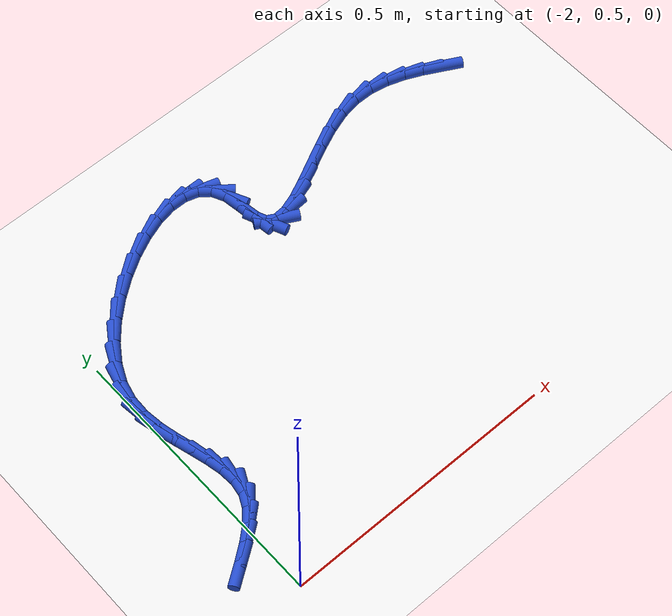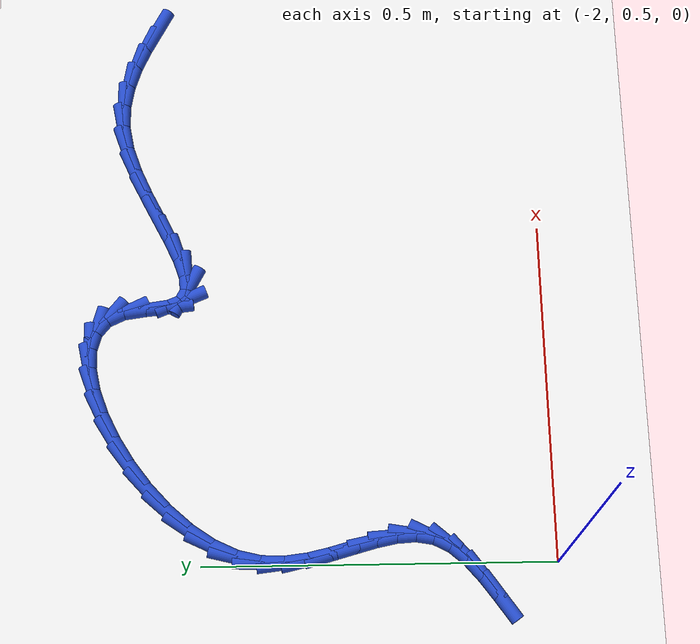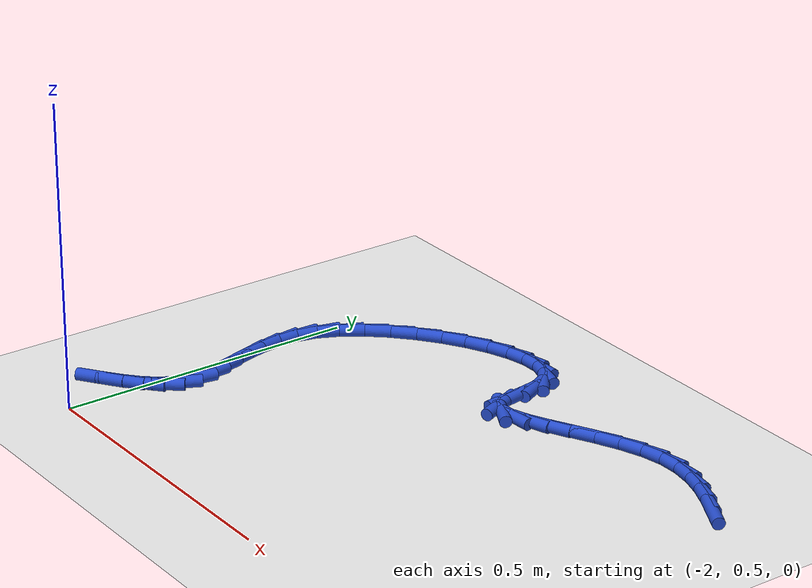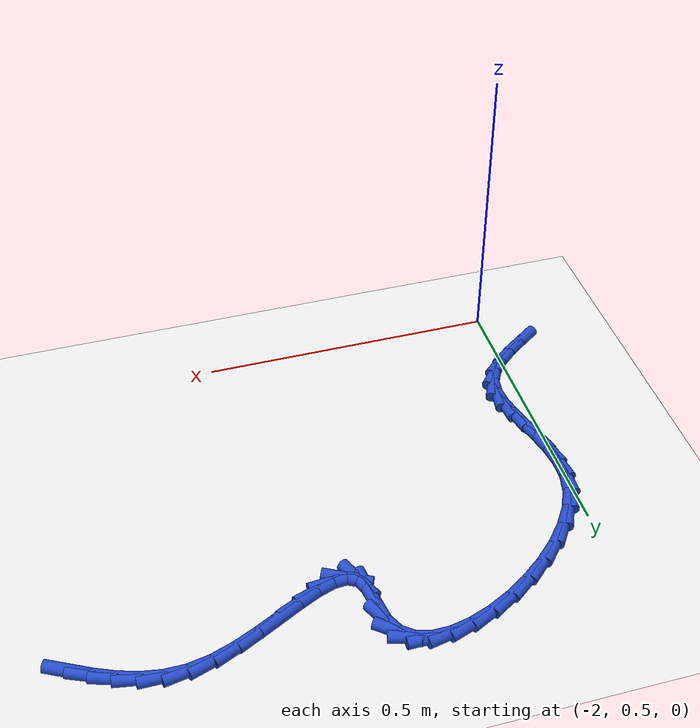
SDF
<sdf version="1.6">
 <world name="default">
  <model name="ground_plane">
   <static>1</static>
   <link name="link">
    <collision name="collision">
     <geometry><plane><normal>0 0 1</normal><size>100 100</size></plane></geometry>
     <surface><friction><ode><mu>100</mu><mu2>50</mu2></ode></friction></surface>
    </collision>
    <visual name="visual">
     <cast_shadows>0</cast_shadows>
     <geometry><plane><normal>0 0 1</normal><size>100 100</size></plane></geometry>
     <material>
      <script><uri>file://media/materials/scripts/gazebo.material</uri><name>Gazebo/WhiteGlow</name></script>
     </material>
    </visual>
   </link>
  </model>
  <model name="line">
   <link name="link_65">
    <pose>-1.1681376035330462 1.0748315598019451 0.01 0 1.57 -0.4891645409560779</pose>
    <collision name="collision">
     <geometry><cylinder><radius>0.01</radius><length>0.08</length></cylinder></geometry>
    </collision>
    <visual name="visual">
     <material>
      <script><name>Gazebo/Blue</name><uri>file://media/materials/scripts/gazebo.material</uri></script>
     </material>
     <geometry><cylinder><radius>0.01</radius><length>0.08</length></cylinder></geometry>
    </visual>
   </link>
   <link name="link_66">
    <pose>-1.1980914725470666 1.0907764678087983 0.01 0 1.57 -0.420090462002091</pose>
    <collision name="collision">
     <geometry><cylinder><radius>0.01</radius><length>0.08</length></cylinder></geometry>
    </collision>
    <visual name="visual">
     <material>
      <script><name>Gazebo/Blue</name><uri>file://media/materials/scripts/gazebo.material</uri></script>
     </material>
     <geometry><cylinder><radius>0.01</radius><length>0.08</length></cylinder></geometry>
    </visual>
   </link>
   <link name="link_67">
    <pose>-1.2291198885289614 1.1046362733399493 0.01 0 1.57 -0.31561590541470685</pose>
    <collision name="collision">
     <geometry><cylinder><radius>0.01</radius><length>0.08</length></cylinder></geometry>
    </collision>
    <visual name="visual">
     <material>
      <script><name>Gazebo/Blue</name><uri>file://media/materials/scripts/gazebo.material</uri></script>
     </material>
     <geometry><cylinder><radius>0.01</radius><length>0.08</length></cylinder></geometry>
    </visual>
   </link>
   <link name="link_68">
    <pose>-1.2613607887427254 1.1151639229093648 0.01 0 1.57 -0.1752657092987587</pose>
    <collision name="collision">
     <geometry><cylinder><radius>0.01</radius><length>0.08</length></cylinder></geometry>
    </collision>
    <visual name="visual">
     <material>
      <script><name>Gazebo/Blue</name><uri>file://media/materials/scripts/gazebo.material</uri></script>
     </material>
     <geometry><cylinder><radius>0.01</radius><length>0.08</length></cylinder></geometry>
    </visual>
   </link>
   <link name="link_69">
    <pose>-1.2949521104523547 1.121112363031013 0.01 0 1.57 -0.0034828337146663407</pose>
    <collision name="collision">
     <geometry><cylinder><radius>0.01</radius><length>0.08</length></cylinder></geometry>
    </collision>
    <visual name="visual">
     <material>
      <script><name>Gazebo/Blue</name><uri>file://media/materials/scripts/gazebo.material</uri></script>
     </material>
     <geometry><cylinder><radius>0.01</radius><length>0.08</length></cylinder></geometry>
    </visual>
   </link>
   <link name="link_70">
    <pose>-1.3300317909218455 1.1212345402188606 0.01 0 1.57 0.1841056616848136</pose>
    <collision name="collision">
     <geometry><cylinder><radius>0.01</radius><length>0.08</length></cylinder></geometry>
    </collision>
    <visual name="visual">
     <material>
      <script><name>Gazebo/Blue</name><uri>file://media/materials/scripts/gazebo.material</uri></script>
     </material>
     <geometry><cylinder><radius>0.01</radius><length>0.08</length></cylinder></geometry>
    </visual>
   </link>
   <link name="link_71">
    <pose>-1.366696831865767 1.1144069839541586 0.01 0 1.57 0.33178543731628474</pose>
    <collision name="collision">
     <geometry><cylinder><radius>0.01</radius><length>0.08</length></cylinder></geometry>
    </collision>
    <visual name="visual">
     <material>
      <script><name>Gazebo/Blue</name><uri>file://media/materials/scripts/gazebo.material</uri></script>
     </material>
     <geometry><cylinder><radius>0.01</radius><length>0.08</length></cylinder></geometry>
    </visual>
   </link>
   <link name="link_72">
    <pose>-1.404412599082707 1.1014131100758102 0.01 0 1.57 0.4205974914448263</pose>
    <collision name="collision">
     <geometry><cylinder><radius>0.01</radius><length>0.08</length></cylinder></geometry>
    </collision>
    <visual name="visual">
     <material>
      <script><name>Gazebo/Blue</name><uri>file://media/materials/scripts/gazebo.material</uri></script>
     </material>
     <geometry><cylinder><radius>0.01</radius><length>0.08</length></cylinder></geometry>
    </visual>
   </link>
   <link name="link_73">
    <pose>-1.442148256166399 1.0845343512250025 0.01 0 1.57 0.46552470300874693</pose>
    <collision name="collision">
     <geometry><cylinder><radius>0.01</radius><length>0.08</length></cylinder></geometry>
    </collision>
    <visual name="visual">
     <material>
      <script><name>Gazebo/Blue</name><uri>file://media/materials/scripts/gazebo.material</uri></script>
     </material>
     <geometry><cylinder><radius>0.01</radius><length>0.08</length></cylinder></geometry>
    </visual>
   </link>
   <link name="link_74">
    <pose>-1.4788596133850216 1.0660924532576839 0.01 0 1.57 0.4719689408459701</pose>
    <collision name="collision">
     <geometry><cylinder><radius>0.01</radius><length>0.08</length></cylinder></geometry>
    </collision>
    <visual name="visual">
     <material>
      <script><name>Gazebo/Blue</name><uri>file://media/materials/scripts/gazebo.material</uri></script>
     </material>
     <geometry><cylinder><radius>0.01</radius><length>0.08</length></cylinder></geometry>
    </visual>
   </link>
   <link name="link_75">
    <pose>-1.5135024810067528 1.0484091620298006 0.01 0 1.57 0.4337284967162558</pose>
    <collision name="collision">
     <geometry><cylinder><radius>0.01</radius><length>0.08</length></cylinder></geometry>
    </collision>
    <visual name="visual">
     <material>
      <script><name>Gazebo/Blue</name><uri>file://media/materials/scripts/gazebo.material</uri></script>
     </material>
     <geometry><cylinder><radius>0.01</radius><length>0.08</length></cylinder></geometry>
    </visual>
   </link>
   <link name="link_76">
    <pose>-1.5450326692997702 1.0338062233973013 0.01 0 1.57 0.3242603970072608</pose>
    <collision name="collision">
     <geometry><cylinder><radius>0.01</radius><length>0.08</length></cylinder></geometry>
    </collision>
    <visual name="visual">
     <material>
      <script><name>Gazebo/Blue</name><uri>file://media/materials/scripts/gazebo.material</uri></script>
     </material>
     <geometry><cylinder><radius>0.01</radius><length>0.08</length></cylinder></geometry>
    </visual>
   </link>
   <link name="link_77">
    <pose>-1.572405988532252 1.0246053832161335 0.01 0 1.57 0.06651630996220159</pose>
    <collision name="collision">
     <geometry><cylinder><radius>0.01</radius><length>0.08</length></cylinder></geometry>
    </collision>
    <visual name="visual">
     <material>
      <script><name>Gazebo/Blue</name><uri>file://media/materials/scripts/gazebo.material</uri></script>
     </material>
     <geometry><cylinder><radius>0.01</radius><length>0.08</length></cylinder></geometry>
    </visual>
   </link>
   <link name="link_78">
    <pose>-1.5945782489723772 1.0231283873422445 0.01 0 1.57 -0.4935767763026419</pose>
    <collision name="collision">
     <geometry><cylinder><radius>0.01</radius><length>0.08</length></cylinder></geometry>
    </collision>
    <visual name="visual">
     <material>
      <script><name>Gazebo/Blue</name><uri>file://media/materials/scripts/gazebo.material</uri></script>
     </material>
     <geometry><cylinder><radius>0.01</radius><length>0.08</length></cylinder></geometry>
    </visual>
   </link>
   <link name="link_79">
    <pose>-1.6105052608883232 1.0316969816315824 0.01 0 1.57 -1.1756102504256896</pose>
    <collision name="collision">
     <geometry><cylinder><radius>0.01</radius><length>0.08</length></cylinder></geometry>
    </collision>
    <visual name="visual">
     <material>
      <script><name>Gazebo/Blue</name><uri>file://media/materials/scripts/gazebo.material</uri></script>
     </material>
     <geometry><cylinder><radius>0.01</radius><length>0.08</length></cylinder></geometry>
    </visual>
   </link>
   <link name="link_80">
    <pose>-1.6192011378538465 1.0525438911507432 0.01 0 1.57 -1.4584580212417875</pose>
    <collision name="collision">
     <geometry><cylinder><radius>0.01</radius><length>0.08</length></cylinder></geometry>
    </collision>
    <visual name="visual">
     <material>
      <script><name>Gazebo/Blue</name><uri>file://media/materials/scripts/gazebo.material</uri></script>
     </material>
     <geometry><cylinder><radius>0.01</radius><length>0.08</length></cylinder></geometry>
    </visual>
   </link>
   <link name="link_81">
    <pose>-1.6226742278219748 1.0833300743177667 0.01 0 1.57 -1.4257801055491455</pose>
    <collision name="collision">
     <geometry><cylinder><radius>0.01</radius><length>0.08</length></cylinder></geometry>
    </collision>
    <visual name="visual">
     <material>
      <script><name>Gazebo/Blue</name><uri>file://media/materials/scripts/gazebo.material</uri></script>
     </material>
     <geometry><cylinder><radius>0.01</radius><length>0.08</length></cylinder></geometry>
    </visual>
   </link>
   <link name="link_82">
    <pose>-1.6273052609795455 1.1150404886972973 0.01 0 1.57 -1.129101199054607</pose>
    <collision name="collision">
     <geometry><cylinder><radius>0.01</radius><length>0.08</length></cylinder></geometry>
    </collision>
    <visual name="visual">
     <material>
      <script><name>Gazebo/Blue</name><uri>file://media/materials/scripts/gazebo.material</uri></script>
     </material>
     <geometry><cylinder><radius>0.01</radius><length>0.08</length></cylinder></geometry>
    </visual>
   </link>
   <link name="link_83">
    <pose>-1.6388274327336372 1.1394078323025023 0.01 0 1.57 -0.6880120646297956</pose>
    <collision name="collision">
     <geometry><cylinder><radius>0.01</radius><length>0.08</length></cylinder></geometry>
    </collision>
    <visual name="visual">
     <material>
      <script><name>Gazebo/Blue</name><uri>file://media/materials/scripts/gazebo.material</uri></script>
     </material>
     <geometry><cylinder><radius>0.01</radius><length>0.08</length></cylinder></geometry>
    </visual>
   </link>
   <link name="link_84">
    <pose>-1.6577084167058402 1.1549279916631974 0.01 0 1.57 -0.2881080730826105</pose>
    <collision name="collision">
     <geometry><cylinder><radius>0.01</radius><length>0.08</length></cylinder></geometry>
    </collision>
    <visual name="visual">
     <material>
      <script><name>Gazebo/Blue</name><uri>file://media/materials/scripts/gazebo.material</uri></script>
     </material>
     <geometry><cylinder><radius>0.01</radius><length>0.08</length></cylinder></geometry>
    </visual>
   </link>
   <link name="link_85">
    <pose>-1.6826787773889262 1.1623280465300831 0.01 0 1.57 -0.0002825180924883924</pose>
    <collision name="collision">
     <geometry><cylinder><radius>0.01</radius><length>0.08</length></cylinder></geometry>
    </collision>
    <visual name="visual">
     <material>
      <script><name>Gazebo/Blue</name><uri>file://media/materials/scripts/gazebo.material</uri></script>
     </material>
     <geometry><cylinder><radius>0.01</radius><length>0.08</length></cylinder></geometry>
    </visual>
   </link>
   <link name="link_86">
    <pose>-1.712468000297416 1.1623364625247399 0.01 0 1.57 0.19702759281976467</pose>
    <collision name="collision">
     <geometry><cylinder><radius>0.01</radius><length>0.08</length></cylinder></geometry>
    </collision>
    <visual name="visual">
     <material>
      <script><name>Gazebo/Blue</name><uri>file://media/materials/scripts/gazebo.material</uri></script>
     </material>
     <geometry><cylinder><radius>0.01</radius><length>0.08</length></cylinder></geometry>
    </visual>
   </link>
   <link name="link_87">
    <pose>-1.7458055709458293 1.1556817052687485 0.01 0 1.57 0.3397749643098452</pose>
    <collision name="collision">
     <geometry><cylinder><radius>0.01</radius><length>0.08</length></cylinder></geometry>
    </collision>
    <visual name="visual">
     <material>
      <script><name>Gazebo/Blue</name><uri>file://media/materials/scripts/gazebo.material</uri></script>
     </material>
     <geometry><cylinder><radius>0.01</radius><length>0.08</length></cylinder></geometry>
    </visual>
   </link>
   <link name="link_88">
    <pose>-1.7814209748486876 1.1430922403836907 0.01 0 1.57 0.45232015156531574</pose>
    <collision name="collision">
     <geometry><cylinder><radius>0.01</radius><length>0.08</length></cylinder></geometry>
    </collision>
    <visual name="visual">
     <material>
      <script><name>Gazebo/Blue</name><uri>file://media/materials/scripts/gazebo.material</uri></script>
     </material>
     <geometry><cylinder><radius>0.01</radius><length>0.08</length></cylinder></geometry>
    </visual>
   </link>
   <link name="link_89">
    <pose>-1.8180436975205103 1.1252965334911473 0.01 0 1.57 0.5496254712279689</pose>
    <collision name="collision">
     <geometry><cylinder><radius>0.01</radius><length>0.08</length></cylinder></geometry>
    </collision>
    <visual name="visual">
     <material>
      <script><name>Gazebo/Blue</name><uri>file://media/materials/scripts/gazebo.material</uri></script>
     </material>
     <geometry><cylinder><radius>0.01</radius><length>0.08</length></cylinder></geometry>
    </visual>
   </link>
   <link name="link_90">
    <pose>-1.8544032244758197 1.1030230502126994 0.01 0 1.57 0.6417240891875174</pose>
    <collision name="collision">
     <geometry><cylinder><radius>0.01</radius><length>0.08</length></cylinder></geometry>
    </collision>
    <visual name="visual">
     <material>
      <script><name>Gazebo/Blue</name><uri>file://media/materials/scripts/gazebo.material</uri></script>
     </material>
     <geometry><cylinder><radius>0.01</radius><length>0.08</length></cylinder></geometry>
    </visual>
   </link>
   <link name="link_91">
    <pose>-1.889229041229135 1.0770002561699266 0.01 0 1.57 0.736670017057577</pose>
    <collision name="collision">
     <geometry><cylinder><radius>0.01</radius><length>0.08</length></cylinder></geometry>
    </collision>
    <visual name="visual">
     <material>
      <script><name>Gazebo/Blue</name><uri>file://media/materials/scripts/gazebo.material</uri></script>
     </material>
     <geometry><cylinder><radius>0.01</radius><length>0.08</length></cylinder></geometry>
    </visual>
   </link>
   <link name="link_92">
    <pose>-1.9212506332949764 1.047956616984412 0.01 0 1.57 0.8425053957451764</pose>
    <collision name="collision">
     <geometry><cylinder><radius>0.01</radius><length>0.08</length></cylinder></geometry>
    </collision>
    <visual name="visual">
     <material>
      <script><name>Gazebo/Blue</name><uri>file://media/materials/scripts/gazebo.material</uri></script>
     </material>
     <geometry><cylinder><radius>0.01</radius><length>0.08</length></cylinder></geometry>
    </visual>
   </link>
   <link name="link_93">
    <pose>-1.9491974861878658 1.0166205982777354 0.01 0 1.57 0.968862096885785</pose>
    <collision name="collision">
     <geometry><cylinder><radius>0.01</radius><length>0.08</length></cylinder></geometry>
    </collision>
    <visual name="visual">
     <material>
      <script><name>Gazebo/Blue</name><uri>file://media/materials/scripts/gazebo.material</uri></script>
     </material>
     <geometry><cylinder><radius>0.01</radius><length>0.08</length></cylinder></geometry>
    </visual>
   </link>
   <link name="link_94">
    <pose>-1.9717990854223235 0.9837206656714772 0.01 0 1.57 1.1282789382225935</pose>
    <collision name="collision">
     <geometry><cylinder><radius>0.01</radius><length>0.08</length></cylinder></geometry>
    </collision>
    <visual name="visual">
     <material>
      <script><name>Gazebo/Blue</name><uri>file://media/materials/scripts/gazebo.material</uri></script>
     </material>
     <geometry><cylinder><radius>0.01</radius><length>0.08</length></cylinder></geometry>
    </visual>
   </link>
   <link name="link_95">
    <pose>-1.9877849165128687 0.9499852847872199 0.01 0 1.57 1.3320387829285734</pose>
    <collision name="collision">
     <geometry><cylinder><radius>0.01</radius><length>0.08</length></cylinder></geometry>
    </collision>
    <visual name="visual">
     <material>
      <script><name>Gazebo/Blue</name><uri>file://media/materials/scripts/gazebo.material</uri></script>
     </material>
     <geometry><cylinder><radius>0.01</radius><length>0.08</length></cylinder></geometry>
    </visual>
   </link>
   <link name="link_96">
    <pose>-1.9960279367113019 0.9161191711199589 0.01 0 1.57 1.5363505416134098</pose>
    <collision name="collision">
     <geometry><cylinder><radius>0.01</radius><length>0.08</length></cylinder></geometry>
    </collision>
    <visual name="visual">
     <material>
      <script><name>Gazebo/Blue</name><uri>file://media/materials/scripts/gazebo.material</uri></script>
     </material>
     <geometry><cylinder><radius>0.01</radius><length>0.08</length></cylinder></geometry>
    </visual>
   </link>
   <link name="link_97">
    <pose>-1.9971853420243804 0.8825316795794504 0.01 0 1.57 -1.448683332496497</pose>
    <collision name="collision">
     <geometry><cylinder><radius>0.01</radius><length>0.08</length></cylinder></geometry>
    </collision>
    <visual name="visual">
     <material>
      <script><name>Gazebo/Blue</name><uri>file://media/materials/scripts/gazebo.material</uri></script>
     </material>
     <geometry><cylinder><radius>0.01</radius><length>0.08</length></cylinder></geometry>
    </visual>
   </link>
   <link name="link_98">
    <pose>-1.993123235519238 0.8494320441578547 0.01 0 1.57 -1.346512156357144</pose>
    <collision name="collision">
     <geometry><cylinder><radius>0.01</radius><length>0.08</length></cylinder></geometry>
    </collision>
    <visual name="visual">
     <material>
      <script><name>Gazebo/Blue</name><uri>file://media/materials/scripts/gazebo.material</uri></script>
     </material>
     <geometry><cylinder><radius>0.01</radius><length>0.08</length></cylinder></geometry>
    </visual>
   </link>
   <link name="link_99">
    <pose>-1.9857306315024605 0.8170257061502642 0.01 0 1.57 -1.2974356809408936</pose>
    <collision name="collision">
     <geometry><cylinder><radius>0.01</radius><length>0.08</length></cylinder></geometry>
    </collision>
    <visual name="visual">
     <material>
      <script><name>Gazebo/Blue</name><uri>file://media/materials/scripts/gazebo.material</uri></script>
     </material>
     <geometry><cylinder><radius>0.01</radius><length>0.08</length></cylinder></geometry>
    </visual>
   </link>
   <link name="link_100">
    <pose>-1.9768965442806326 0.7855181068517734 0.01 0 1.57 -1.301646990647331</pose>
    <collision name="collision">
     <geometry><cylinder><radius>0.01</radius><length>0.08</length></cylinder></geometry>
    </collision>
    <visual name="visual">
     <material>
      <script><name>Gazebo/Blue</name><uri>file://media/materials/scripts/gazebo.material</uri></script>
     </material>
     <geometry><cylinder><radius>0.01</radius><length>0.08</length></cylinder></geometry>
    </visual>
   </link>
   <link name="link_101">
    <pose>-1.9685099881603398 0.7551146875574745 0.01 0 1.57 -1.3657698221982324</pose>
    <collision name="collision">
     <geometry><cylinder><radius>0.01</radius><length>0.08</length></cylinder></geometry>
    </collision>
    <visual name="visual">
     <material>
      <script><name>Gazebo/Blue</name><uri>file://media/materials/scripts/gazebo.material</uri></script>
     </material>
     <geometry><cylinder><radius>0.01</radius><length>0.08</length></cylinder></geometry>
    </visual>
   </link>
   <link name="link_102">
    <pose>-1.9624599774481675 0.7260208895624604 0.01 0 1.57 -1.504738313737691</pose>
    <collision name="collision">
     <geometry><cylinder><radius>0.01</radius><length>0.08</length></cylinder></geometry>
    </collision>
    <visual name="visual">
     <material>
      <script><name>Gazebo/Blue</name><uri>file://media/materials/scripts/gazebo.material</uri></script>
     </material>
     <geometry><cylinder><radius>0.01</radius><length>0.08</length></cylinder></geometry>
    </visual>
   </link>
   <link name="link_103">
    <pose>-1.9606355264507 0.6984421541618246 0.01 0 1.57 1.4063845642479251</pose>
    <collision name="collision">
     <geometry><cylinder><radius>0.01</radius><length>0.08</length></cylinder></geometry>
    </collision>
    <visual name="visual">
     <material>
      <script><name>Gazebo/Blue</name><uri>file://media/materials/scripts/gazebo.material</uri></script>
     </material>
     <geometry><cylinder><radius>0.01</radius><length>0.08</length></cylinder></geometry>
    </visual>
   </link>
   <link name="link_104">
    <pose>-1.9649256494745242 0.6725839226506604 0.01 0 1.57 1.103408914185026</pose>
    <collision name="collision">
     <geometry><cylinder><radius>0.01</radius><length>0.08</length></cylinder></geometry>
    </collision>
    <visual name="visual">
     <material>
      <script><name>Gazebo/Blue</name><uri>file://media/materials/scripts/gazebo.material</uri></script>
     </material>
     <geometry><cylinder><radius>0.01</radius><length>0.08</length></cylinder></geometry>
    </visual>
   </link>
   <link name="link_105">
    <pose>-1.9770204134431242 0.6486188769308961 0.01 0 1.57 0.8566999992869947</pose>
    <collision name="collision">
     <geometry><cylinder><radius>0.01</radius><length>0.08</length></cylinder></geometry>
    </collision>
    <visual name="visual">
     <material>
      <script><name>Gazebo/Blue</name><uri>file://media/materials/scripts/gazebo.material</uri></script>
     </material>
     <geometry><cylinder><radius>0.01</radius><length>0.08</length></cylinder></geometry>
    </visual>
   </link>
   <link name="link_106">
    <pose>-1.9963258690609815 0.6263436045615952 0.01 0 1.57 0.7100795292136121</pose>
    <collision name="collision">
     <geometry><cylinder><radius>0.01</radius><length>0.08</length></cylinder></geometry>
    </collision>
    <visual name="visual">
     <material>
      <script><name>Gazebo/Blue</name><uri>file://media/materials/scripts/gazebo.material</uri></script>
     </material>
     <geometry><cylinder><radius>0.01</radius><length>0.08</length></cylinder></geometry>
    </visual>
   </link>
   <link name="link_107">
    <pose>-2.0207880445550677 0.6053142805383371 0.01 0 1.57 0.6335567025732058</pose>
    <collision name="collision">
     <geometry><cylinder><radius>0.01</radius><length>0.08</length></cylinder></geometry>
    </collision>
    <visual name="visual">
     <material>
      <script><name>Gazebo/Blue</name><uri>file://media/materials/scripts/gazebo.material</uri></script>
     </material>
     <geometry><cylinder><radius>0.01</radius><length>0.08</length></cylinder></geometry>
    </visual>
   </link>
   <link name="link_108">
    <pose>-2.0483292354356206 0.5850831719420261 0.01 0 1.57 0.6083913565201035</pose>
    <collision name="collision">
     <geometry><cylinder><radius>0.01</radius><length>0.08</length></cylinder></geometry>
    </collision>
    <visual name="visual">
     <material>
      <script><name>Gazebo/Blue</name><uri>file://media/materials/scripts/gazebo.material</uri></script>
     </material>
     <geometry><cylinder><radius>0.01</radius><length>0.08</length></cylinder></geometry>
    </visual>
   </link>
  </model>
 </world>
</sdf>
